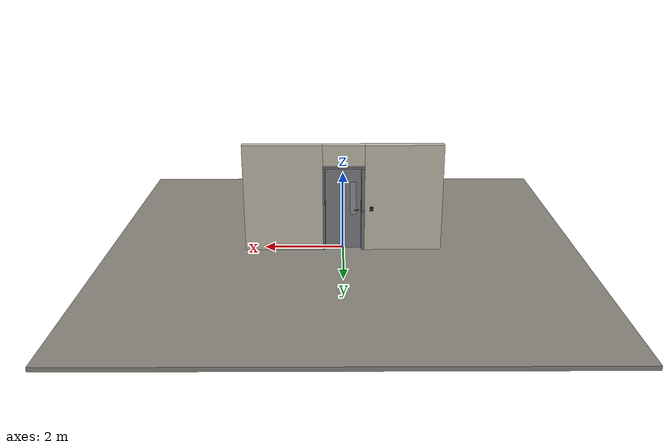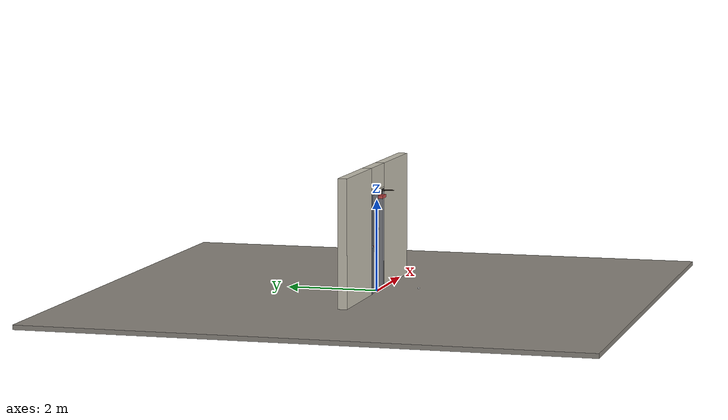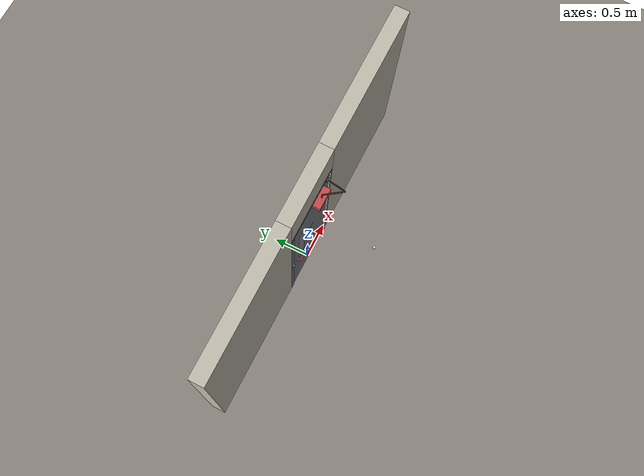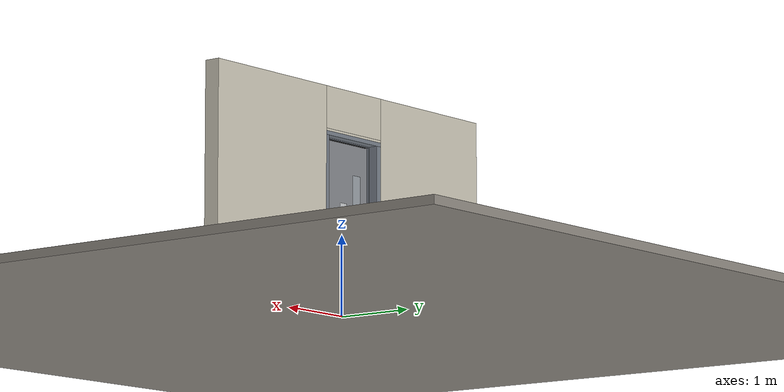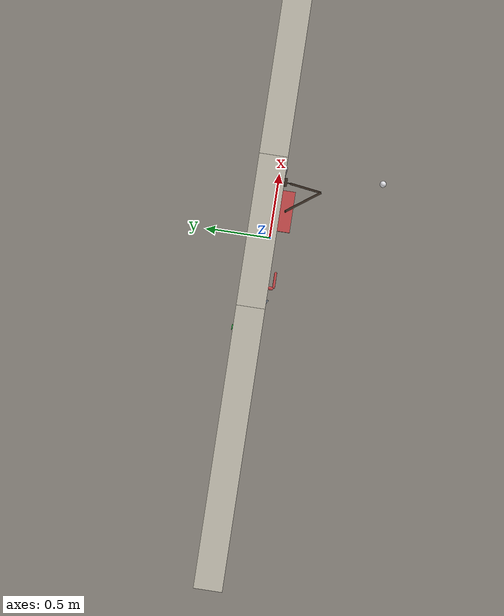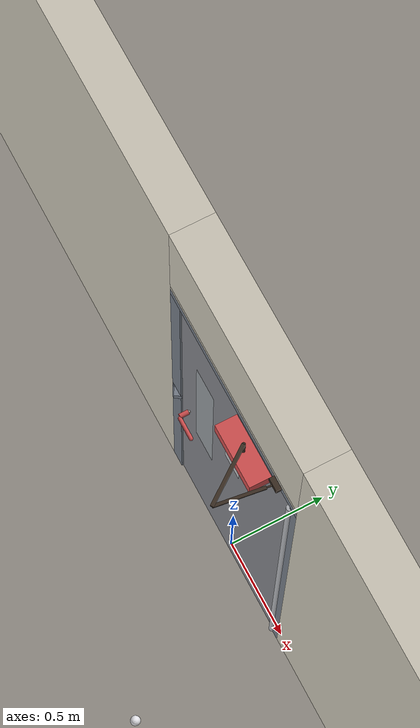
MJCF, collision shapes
<?xml version="1.0" ?>
<mujoco model="db0680_swing_single_full">
  <compiler angle="radian" meshdir="../../hardware" texturedir="../../textures" autolimits="true" inertiafromgeom="false"/>
  <option timestep="0.002" integrator="implicitfast" cone="elliptic" impratio="10" noslip_iterations="3">
    <flag multiccd="enable"/>
  </option>
  <size memory="16M"/>
  <default>
    <geom condim="4" solref="0.005 1" solimp="0.95 0.99 0.001"/>
    <joint solreflimit="0.005 1" solimplimit="0.95 0.99 0.001"/>
    <tendon solreflimit="0.005 1"/>
    <equality solref="0.002 1"/>
  </default>
  <visual>
    <headlight ambient="0.4 0.4 0.4" diffuse="0.7 0.7 0.7" specular="0.2 0.2 0.2"/>
    <quality shadowsize="4096"/>
    <map znear="0.01" zfar="60"/>
  </visual>
  <asset>
    <mesh name="closer_body_fdc4667657" file="closer_body_fdc4667657.obj"/>
    <mesh name="lever_9f02b544cf" file="lever_9f02b544cf.obj"/>
    <material name="mat_floor" rgba="0.55 0.53 0.5 1" specular="0.2" shininess="0.15" reflectance="0"/>
    <material name="mat_wall" rgba="0.78 0.76 0.7 1" specular="0.2" shininess="0.1" reflectance="0"/>
    <material name="mat_leaf" rgba="0.5 0.51 0.53 1" specular="0.23" shininess="0.46" reflectance="0.02"/>
    <material name="mat_glass" rgba="0.85 0.92 0.95 0.25" specular="0.2" shininess="0.95" reflectance="0.1"/>
    <material name="mat_hinge" rgba="0.65 0.66 0.68 1" specular="0.74" shininess="0.5" reflectance="0.36"/>
    <material name="mat_op_nickel_satin" rgba="0.72 0.7 0.66 1" specular="0.8" shininess="0.65" reflectance="0.4"/>
    <material name="mat_trim" rgba="0.85 0.66 0.3 1" specular="0.8" shininess="0.75" reflectance="0.4"/>
    <material name="mat_bolt" rgba="0.75 0.76 0.77 1" specular="0.8" shininess="0.65" reflectance="0.4"/>
    <material name="mat_frame" rgba="0.45 0.48 0.52 1" specular="0.32" shininess="0.6" reflectance="0.08"/>
    <material name="mat_seal" rgba="0.1 0.1 0.1 1" specular="0.2" shininess="0.1" reflectance="0"/>
    <material name="mat_closer" rgba="0.22 0.17 0.13 1" specular="0.8" shininess="0.6" reflectance="0.4"/>
    <material name="mat_sign" rgba="0.75 0.76 0.77 1" specular="0.8" shininess="0.65" reflectance="0.4"/>
    <material name="mat_wallreader" rgba="0.05 0.05 0.05 1" specular="0.38" shininess="0.3" reflectance="0.12"/>
    <material name="mat_rex" rgba="0.1 0.6 0.2 1" specular="0.2" shininess="0.6" reflectance="0"/>
    <material name="mat_stop" rgba="0.9 0.9 0.92 1" specular="0.8" shininess="0.9" reflectance="0.4"/>
    <texture name="skybox" type="skybox" builtin="gradient" rgb1="0.6 0.7 0.85" rgb2="0.9 0.92 0.95" width="256" height="256"/>
  </asset>
  <worldbody>
    <light name="sun" pos="1.5 -2.5 4" dir="-0.3 0.5 -0.8" directional="true" diffuse="0.8 0.8 0.8" specular="0.3 0.3 0.3" castshadow="true"/>
    <light name="fill" pos="-1.5 2.5 3" dir="0.3 -0.5 -0.7" directional="true" diffuse="0.35 0.35 0.4" castshadow="false"/>
    <camera name="robot_view" pos="0 -2.566812 1.812087" xyaxes="1 0 0 0 0.26963 0.962964" fovy="52"/>
    <camera name="far_view" pos="0 2.708813 1.812087" xyaxes="-1 0 0 0 -0.26963 0.962964" fovy="52"/>
    <camera name="iso" pos="-2.004737 -2.144762 2.234138" xyaxes="0.741536 -0.670913 0 0.242917 0.268487 0.932151" fovy="46"/>
    <camera name="detail_handle" pos="-0.1065 -0.877 1.32" xyaxes="0.97561 0.219512 0 -0.070934 0.315262 0.94635" fovy="38"/>
    <geom name="floor" type="box" size="6 6 0.05" pos="0 0 -0.05" material="mat_floor" group="0" contype="1" conaffinity="1" friction="0.8 0.005 0.0001" density="2400"/>
    <geom name="wall_left" type="box" size="0.97975 0.1 1.3735" pos="-1.52025 0.071 1.3735" material="mat_wall" group="0" contype="1" conaffinity="1" friction="0.6 0.005 0.0001" density="800"/>
    <geom name="wall_right" type="box" size="0.99475 0.1 1.3735" pos="1.50525 0.071 1.3735" material="mat_wall" group="0" contype="1" conaffinity="1" friction="0.6 0.005 0.0001" density="800"/>
    <geom name="wall_header" type="box" size="0.5255 0.1 0.26" pos="-0.015 0.071 2.487" material="mat_wall" group="0" contype="1" conaffinity="1" friction="0.6 0.005 0.0001" density="800"/>
    <geom name="jamb_hinge" type="box" size="0.025 0.1 1.0735" pos="0.4855 0.071 1.0735" material="mat_frame" group="0" contype="1" conaffinity="1" friction="0.6 0.005 0.0001" density="300"/>
    <geom name="strike_1040_wall_n" type="box" size="0.04 0.08075 0.018" pos="-0.5005 0.09025 1.04" material="mat_frame" group="0" contype="1" conaffinity="1" friction="0.6 0.005 0.0001" density="300"/>
    <geom name="strike_1040_wall_p" type="box" size="0.04 0.008 0.018" pos="-0.5005 -0.0175 1.04" material="mat_frame" group="0" contype="1" conaffinity="1" friction="0.6 0.005 0.0001" density="300"/>
    <geom name="strike_1040_ramp" type="box" size="0.04 0.018028 0.018" pos="-0.503782 -0.018312 1.04" quat="0.957092 0 0 -0.289784" material="mat_frame" group="0" contype="1" conaffinity="1" friction="0.12 0.005 0.0001" density="300"/>
    <geom name="strike_1040_back" type="box" size="0.0285 0.0095 0.018" pos="-0.512 0 1.04" material="mat_frame" group="0" contype="1" conaffinity="1" friction="0.6 0.005 0.0001" density="300"/>
    <geom name="jamb_strike_0" type="box" size="0.04 0.1 0.511" pos="-0.5005 0.071 0.511" material="mat_frame" group="0" contype="1" conaffinity="1" friction="0.6 0.005 0.0001" density="300"/>
    <geom name="jamb_strike_1" type="box" size="0.04 0.1 0.5445" pos="-0.5005 0.071 1.6025" material="mat_frame" group="0" contype="1" conaffinity="1" friction="0.6 0.005 0.0001" density="300"/>
    <geom name="jamb_head" type="box" size="0.5255 0.1 0.025" pos="-0.015 0.071 2.172" material="mat_frame" group="0" contype="1" conaffinity="1" friction="0.6 0.005 0.0001" density="300"/>
    <geom name="head_stud" type="box" size="0.5255 0.1 0.015" pos="-0.015 0.071 2.212" material="mat_wall" group="0" contype="1" conaffinity="1" friction="0.6 0.005 0.0001" density="500"/>
    <geom name="stop_hinge" type="box" size="0.0055 0.016 1.0735" pos="0.455 0.0385 1.0735" material="mat_frame" group="0" contype="1" conaffinity="1" friction="0.6 0.005 0.0001" density="300"/>
    <geom name="stop_strike" type="box" size="0.0055 0.016 1.0735" pos="-0.455 0.0385 1.0735" material="mat_frame" group="0" contype="1" conaffinity="1" friction="0.6 0.005 0.0001" density="300"/>
    <geom name="stop_head" type="box" size="0.4605 0.016 0.0055" pos="0 0.0385 2.1415" material="mat_frame" group="0" contype="1" conaffinity="1" friction="0.6 0.005 0.0001" density="300"/>
    <geom name="seal_hinge" type="box" size="0.004 0.002 1.0735" pos="0.4575 0.024 1.0735" material="mat_seal" group="1" contype="0" conaffinity="0" density="1100"/>
    <geom name="seal_strike" type="box" size="0.004 0.002 1.0735" pos="-0.4575 0.024 1.0735" material="mat_seal" group="1" contype="0" conaffinity="0" density="1100"/>
    <geom name="seal_head" type="box" size="0.4405 0.002 0.008" pos="0 0.024 2.135" material="mat_seal" group="1" contype="0" conaffinity="0" density="1100"/>
    <geom name="closer_bracket" type="box" size="0.03 0.012 0.014" pos="0.3605 -0.041 2.177" material="mat_closer" group="1" contype="0" conaffinity="0" density="2700"/>
    <geom name="rex_plate" type="box" size="0.04 0.003 0.06" pos="-0.7105 0.174 1.1" material="mat_wallreader" group="1" contype="0" conaffinity="0" density="1000"/>
    <geom name="floor_stop_dome" type="sphere" size="0.025" pos="0.545135 -0.801201 0" material="mat_stop" group="0" contype="1" conaffinity="1" friction="0.6 0.005 0.0001" density="7000"/>
    <site name="approach_point" pos="0 -1.5 0" quat="1 0 0 0" size="0.05" rgba="0.2 0.9 0.2 0.5" group="4"/>
    <site name="goal_point" pos="0 1.5 0" quat="1 0 0 0" size="0.05" rgba="0.2 0.9 0.2 0.5" group="4"/>
    <site name="door_plane_center" pos="0 0 1.0735" quat="1 0 0 0" size="0.02" rgba="0.2 0.9 0.2 0.5" group="4"/>
    <body name="rex_button" pos="-0.7105 0.177 1.1">
      <inertial pos="0 0.004 0" mass="0.010053" quat="0 0 0.707107 -0.707107" diaginertia="0.000001059 0.000001059 0.000002011"/>
      <joint name="rex_button_slide" type="slide" axis="0 -1 0" limited="true" range="0 0.004" damping="1" stiffness="1500" springref="-0.004" armature="0.1"/>
      <geom name="rex_button_geom" type="cylinder" size="0.02 0.004" pos="0 0.004 0" quat="0.707107 -0.707107 0 0" material="mat_rex" group="0" contype="1" conaffinity="1" friction="0.6 0.005 0.0001" density="1000"/>
    </body>
    <body name="leaf" pos="0.4605 0 0">
      <inertial pos="-0.386478 -0.022013 1.351476" mass="43.320799" quat="0.514636 -0.514268 -0.470639 -0.499177" diaginertia="2.682898888 20.206797086 22.810895422"/>
      <joint name="leaf_hinge" type="hinge" axis="0 0 1" pos="-0.003 -0.029 0" limited="true" range="0 1.658063" solreflimit="0.02 1" damping="12.268966" frictionloss="1.291736" stiffness="10.650649" springref="-2.180149" armature="0.02"/>
      <geom name="leaf_slab" type="box" size="0.457 0.022 1.067" pos="-0.46 0 1.076" material="mat_leaf" group="0" contype="1" conaffinity="1" friction="0.4 0.005 0.0001" density="1"/>
      <geom name="leaf_glass_0" type="box" size="0.075 0.0228 0.4268" pos="-0.71146 0 1.33208" material="mat_glass" group="1" contype="0" conaffinity="0" density="1"/>
      <geom name="hinge_continuous" type="cylinder" size="0.0136 1.057" pos="-0.003 -0.029 1.076" material="mat_hinge" group="1" contype="0" conaffinity="0" density="2700"/>
      <geom name="leaf_latch_bolt_faceplate" type="box" size="0.0006 0.014 0.028" pos="-0.9164 0 1.04" material="mat_bolt" group="1" contype="0" conaffinity="0" density="8500"/>
      <geom name="closer_body" type="mesh" mesh="closer_body_fdc4667657" pos="-0.3 -0.022 2.054" quat="0 0 -0.707107 0.707107" material="mat_closer" group="1" contype="0" conaffinity="0" density="2000"/>
      <geom name="closer_body_col" type="box" size="0.145 0.05 0.035" pos="-0.3 -0.072 2.054" material="mat_closer" group="3" contype="1" conaffinity="1" rgba="0.8 0.3 0.3 0.25" friction="0.6 0.005 0.0001" density="2000"/>
      <geom name="closer_pinion_shaft" type="cylinder" size="0.008 0.0615" pos="-0.3 -0.072 2.1155" material="mat_closer" group="1" contype="0" conaffinity="0" density="2700"/>
      <geom name="sign_push" type="box" size="0.06 0.001 0.03" pos="-0.46 0.023 1.359" material="mat_sign" group="2" contype="0" conaffinity="0" density="7900"/>
      <geom name="sign_pull" type="box" size="0.06 0.001 0.03" pos="-0.46 -0.023 1.359" material="mat_sign" group="2" contype="0" conaffinity="0" density="7900"/>
      <site name="leaf_edge_mid" pos="-0.917 0 1.067" quat="1 0 0 0" size="0.02" rgba="0.2 0.9 0.2 0.5" group="4"/>
      <body name="leaf_handle" pos="-0.847 0 1.04">
        <inertial pos="0.028544 0 0" mass="0.978187" quat="0 0.707107 0.707107 0" diaginertia="0.001772047 0.003604455 0.005198299"/>
        <joint name="leaf_handle_hinge" type="hinge" axis="0 1 0" limited="true" range="0 0.96" damping="0.245624" frictionloss="0.048" stiffness="1.2" springref="-0.458333" armature="0.01"/>
        <geom name="leaf_handle_spindle" type="cylinder" size="0.006 0.03" pos="0 0 0" quat="0.707107 -0.707107 0 0" material="mat_op_nickel_satin" group="1" contype="0" conaffinity="0" density="7850"/>
        <geom name="leaf_handle_lever_n" type="mesh" mesh="lever_9f02b544cf" pos="0 -0.022 0" quat="0 0 -0.707107 0.707107" material="mat_op_nickel_satin" group="1" contype="0" conaffinity="0" density="3000"/>
        <geom name="leaf_handle_lever_col_n" type="capsule" size="0.0095 0.053" pos="0.0625 -0.077 0" quat="0.707107 0 0.707107 0" material="mat_op_nickel_satin" group="3" contype="1" conaffinity="1" rgba="0.8 0.3 0.3 0.25" friction="0.7 0.01 0.0001" density="3000"/>
        <geom name="leaf_handle_hub_col_n" type="cylinder" size="0.012 0.022" pos="0 -0.052 0" quat="0.707107 -0.707107 0 0" material="mat_op_nickel_satin" group="3" contype="1" conaffinity="1" rgba="0.8 0.3 0.3 0.25" friction="0.6 0.005 0.0001" density="3000"/>
        <geom name="leaf_handle_lever_p" type="mesh" mesh="lever_9f02b544cf" pos="0 0.022 0" quat="0 0 0.707107 0.707107" material="mat_op_nickel_satin" group="1" contype="0" conaffinity="0" density="3000"/>
        <geom name="leaf_handle_lever_col_p" type="capsule" size="0.0095 0.053" pos="0.0625 0.077 0" quat="0.707107 0 0.707107 0" material="mat_op_nickel_satin" group="3" contype="1" conaffinity="1" rgba="0.8 0.3 0.3 0.25" friction="0.7 0.01 0.0001" density="3000"/>
        <geom name="leaf_handle_hub_col_p" type="cylinder" size="0.012 0.022" pos="0 0.052 0" quat="0.707107 -0.707107 0 0" material="mat_op_nickel_satin" group="3" contype="1" conaffinity="1" rgba="0.8 0.3 0.3 0.25" friction="0.6 0.005 0.0001" density="3000"/>
        <site name="leaf_handle_grip_n" pos="0.1 -0.077 0" quat="1 0 0 0" size="0.012" rgba="0.2 0.9 0.2 0.5" group="4"/>
        <site name="leaf_handle_grip_p" pos="0.1 0.077 0" quat="1 0 0 0" size="0.012" rgba="0.2 0.9 0.2 0.5" group="4"/>
      </body>
      <body name="leaf_latch_bolt" pos="-0.917 0 1.04">
        <inertial pos="0.0055 0 0" mass="0.074627" quat="0.92388 0.382683 0 0" diaginertia="0.000002271 0.000013255 0.000013255"/>
        <joint name="leaf_latch_bolt_slide" type="slide" axis="1 0 0" limited="true" range="0 0.019" damping="2" frictionloss="0.3" stiffness="550" springref="-0.01" armature="0.1"/>
        <geom name="leaf_latch_bolt_capsule" type="capsule" size="0.008 0.0165" pos="0.0055 0 0" quat="0.707107 0 -0.707107 0" material="mat_bolt" group="0" contype="1" conaffinity="1" friction="0.2 0.005 0.0001" density="8500"/>
      </body>
      <body name="closer_arm_main" pos="-0.3 -0.072 2.177" quat="0.890947 0 0 -0.454107">
        <inertial pos="0.14 0 0" mass="0.12096" quat="1 0 0 0" diaginertia="0.000003588 0.00079128 0.000792852"/>
        <joint name="closer_pinion" type="hinge" axis="0 0 1" limited="false" damping="0.01" armature="0.002"/>
        <geom name="closer_arm_main_geom" type="box" size="0.14 0.008 0.005" pos="0.14 0 0" material="mat_closer" group="1" contype="0" conaffinity="0" density="2700"/>
        <body name="closer_arm_fore" pos="0.28 0 0" quat="0.373215 0 0 0.927745">
          <inertial pos="0.128088 0 0" mass="0.076531" quat="1 0 0 0" diaginertia="0.000001771 0.000437665 0.000438201"/>
          <joint name="closer_elbow" type="hinge" axis="0 0 1" limited="false" damping="0.01" armature="0.002"/>
          <geom name="closer_arm_fore_geom" type="box" size="0.1125 0.007 0.004" pos="0.1125 0 0" material="mat_closer" group="1" contype="0" conaffinity="0" density="2700"/>
          <geom name="closer_fore_neck" type="box" size="0.0175 0.003 0.003" pos="0.2425 0 0" material="mat_closer" group="1" contype="0" conaffinity="0" density="2700"/>
          <geom name="closer_fore_pivot" type="cylinder" size="0.005 0.012" pos="0.26 0 0" material="mat_closer" group="1" contype="0" conaffinity="0" density="2700"/>
        </body>
      </body>
    </body>
  </worldbody>
  <tendon>
    <fixed name="leaf_latch_bolt_coupling" limited="true" range="0 10">
      <joint joint="leaf_latch_bolt_slide" coef="1"/>
      <joint joint="leaf_handle_hinge" coef="-0.020879"/>
    </fixed>
  </tendon>
  <equality>
    <connect name="closer_arm_connect" body1="closer_arm_fore" body2="world" anchor="0.26 0 0" active="true"/>
  </equality>
  <contact>
    <exclude body1="closer_arm_main" body2="leaf"/>
    <exclude body1="closer_arm_fore" body2="leaf"/>
    <exclude body1="closer_arm_main" body2="closer_arm_fore"/>
  </contact>
  <sensor>
    <jointpos name="leaf_hinge_pos" joint="leaf_hinge"/>
    <jointvel name="leaf_hinge_vel" joint="leaf_hinge"/>
    <jointpos name="leaf_handle_hinge_pos" joint="leaf_handle_hinge"/>
    <jointvel name="leaf_handle_hinge_vel" joint="leaf_handle_hinge"/>
    <jointpos name="leaf_latch_bolt_slide_pos" joint="leaf_latch_bolt_slide"/>
    <jointvel name="leaf_latch_bolt_slide_vel" joint="leaf_latch_bolt_slide"/>
    <jointpos name="rex_button_slide_pos" joint="rex_button_slide"/>
    <jointvel name="rex_button_slide_vel" joint="rex_button_slide"/>
  </sensor>
</mujoco>
